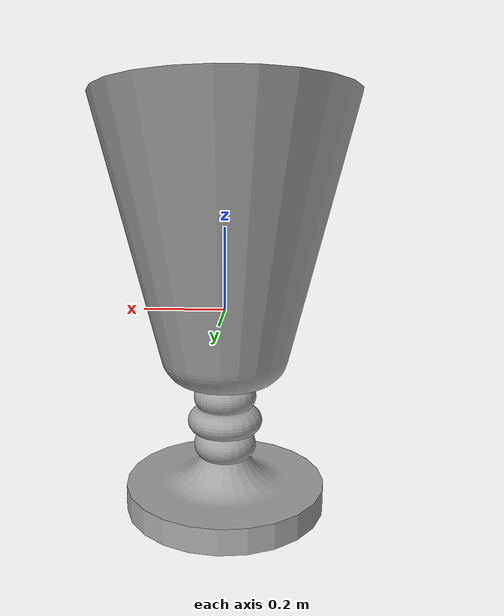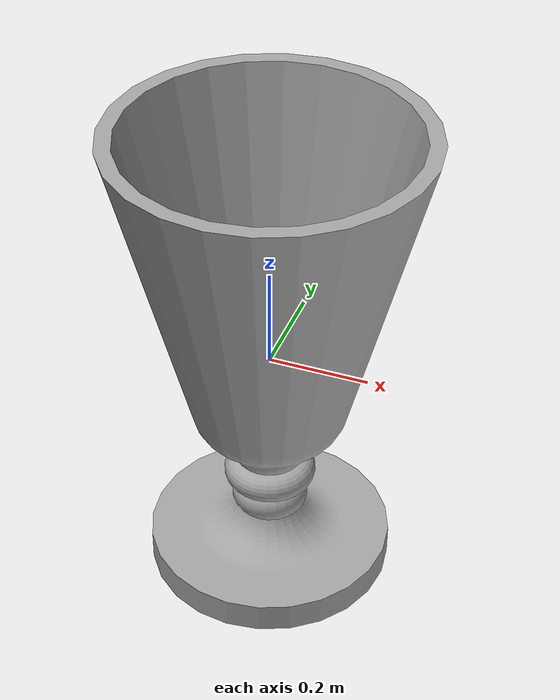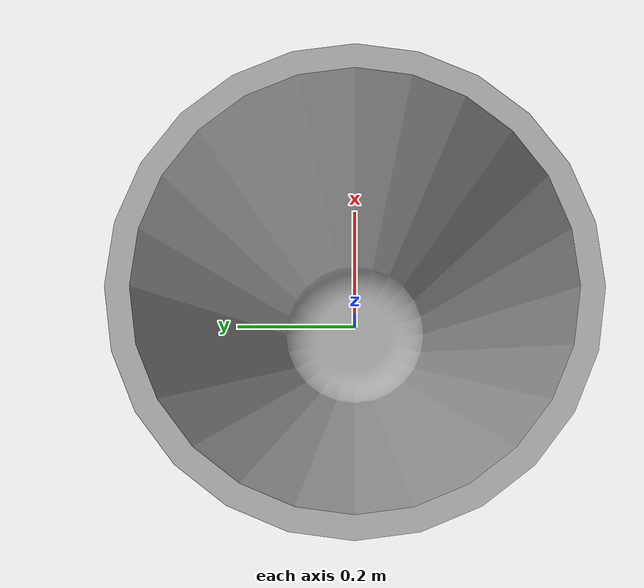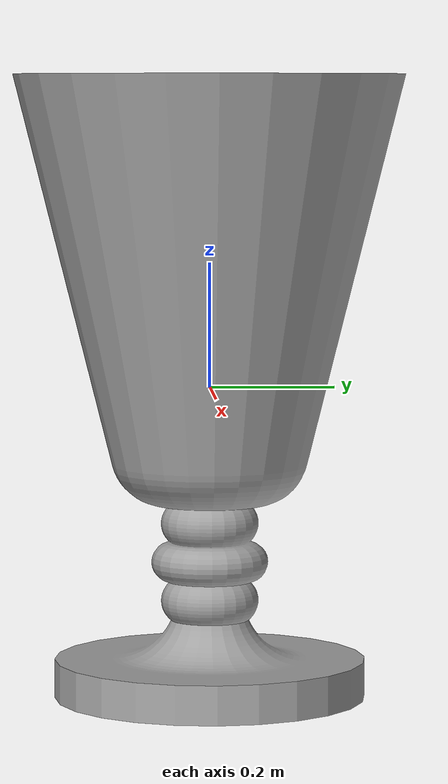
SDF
<?xml version="1.0" ?>
<sdf version="1.5">
  <model name='cup1'>
    <pose>0 0 0 0 0 0</pose>
    <static>1</static>
    <link name='body'>
      <collision name="cup1-coll">
        <pose>0 0 -0.5 0 0 0</pose>
        <geometry>
          <mesh>
            <uri>model://cup1/meshes/cup1.dae</uri>
          </mesh>
        </geometry>
      </collision>
      <visual name='cup1'>
        <cast_shadows>1</cast_shadows>
        <pose>0 0 -0.5 0 0 0</pose>
        <geometry>
          <mesh>
            <uri>model://cup1/meshes/cup1.dae</uri>
          </mesh>
        </geometry>
      </visual>
      <velocity_decay>
        <linear>0</linear>
        <angular>0</angular>
      </velocity_decay>
      <self_collide>0</self_collide>
      <kinematic>0</kinematic>
      <gravity>1</gravity>
    </link>
  </model>

</sdf>
